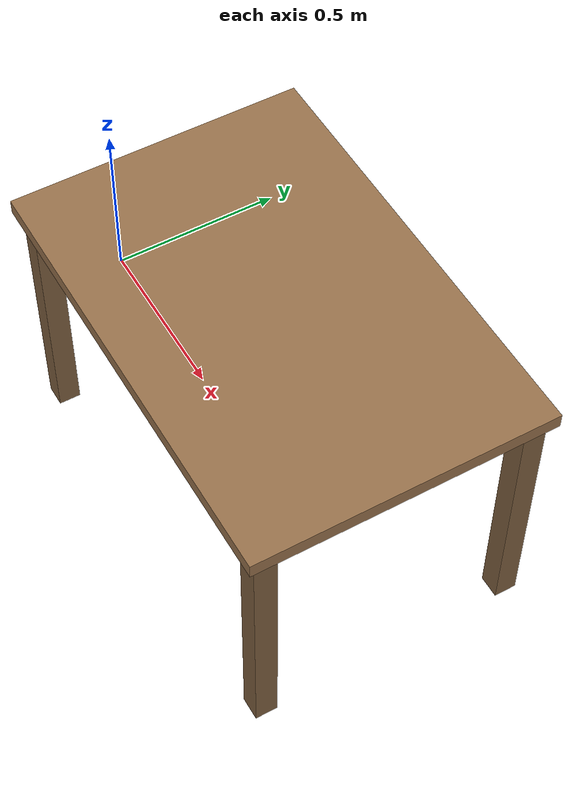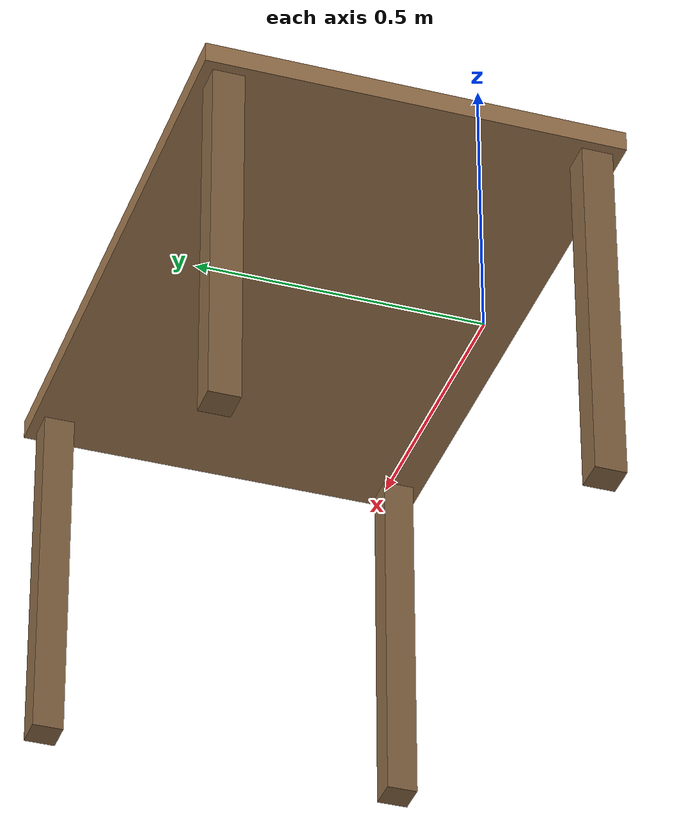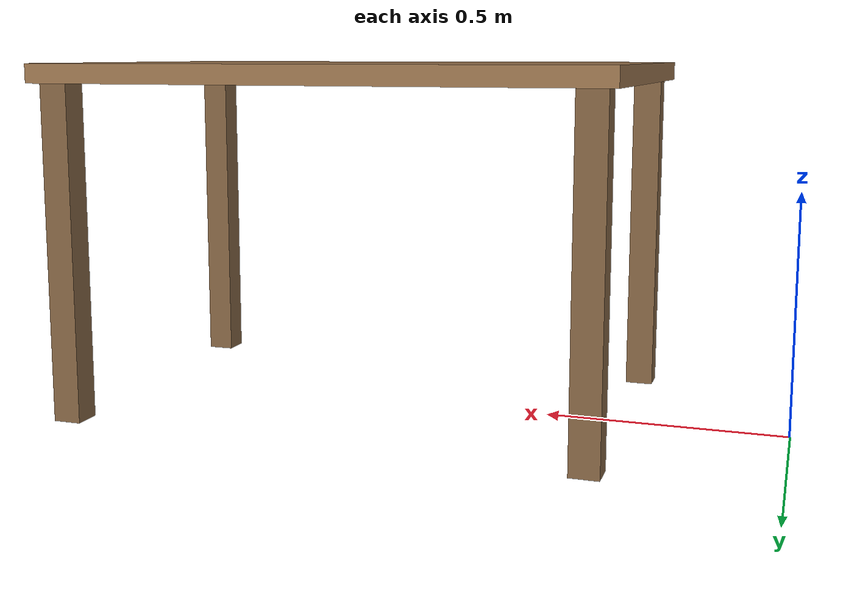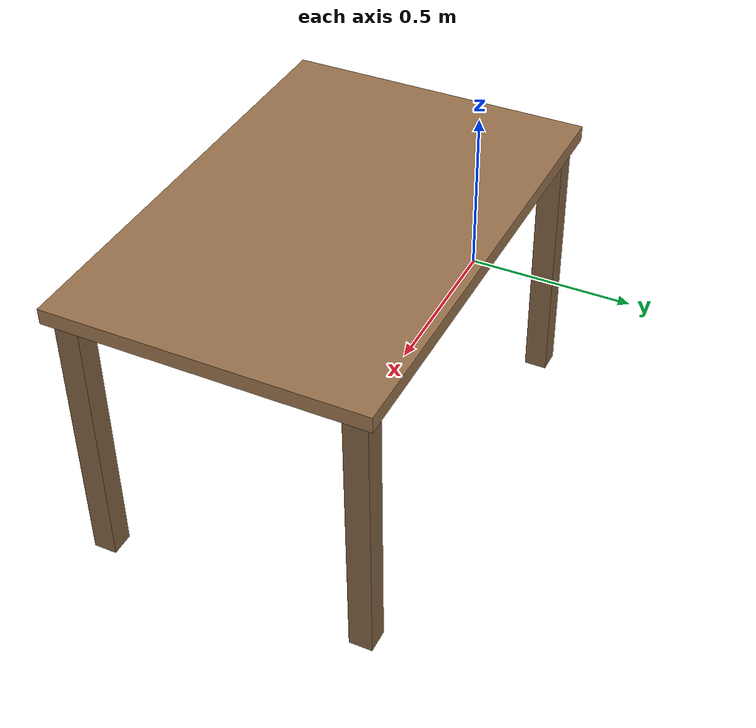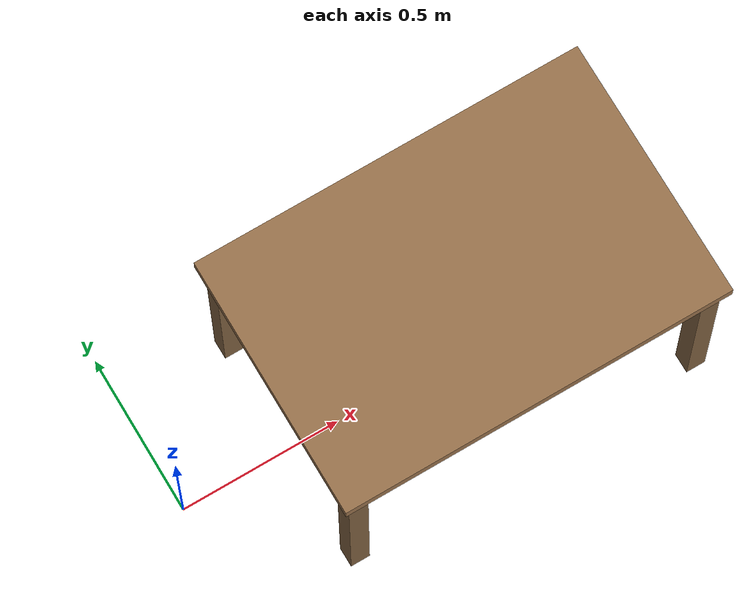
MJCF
<mujoco model="table">
  <worldbody>
    <!-- 1.2 x 0.8 m table, top surface at z = 0.75 -->
    <body name="table" pos="0.9 0.0 0.0">
      <geom name="table_top" type="box" pos="0 0 0.73" size="0.6 0.4 0.02"
            rgba="0.6 0.45 0.3 1"/>
      <geom name="table_leg_1" type="box" pos="0.55 0.35 0.355" size="0.03 0.03 0.355" rgba="0.5 0.38 0.25 1"/>
      <geom name="table_leg_2" type="box" pos="-0.55 0.35 0.355" size="0.03 0.03 0.355" rgba="0.5 0.38 0.25 1"/>
      <geom name="table_leg_3" type="box" pos="0.55 -0.35 0.355" size="0.03 0.03 0.355" rgba="0.5 0.38 0.25 1"/>
      <geom name="table_leg_4" type="box" pos="-0.55 -0.35 0.355" size="0.03 0.03 0.355" rgba="0.5 0.38 0.25 1"/>
    </body>
  </worldbody>
</mujoco>
